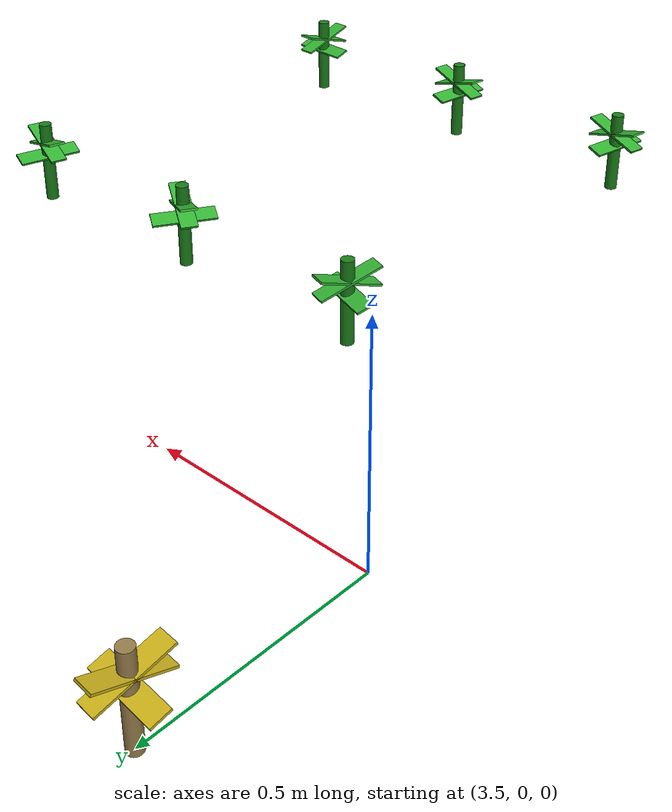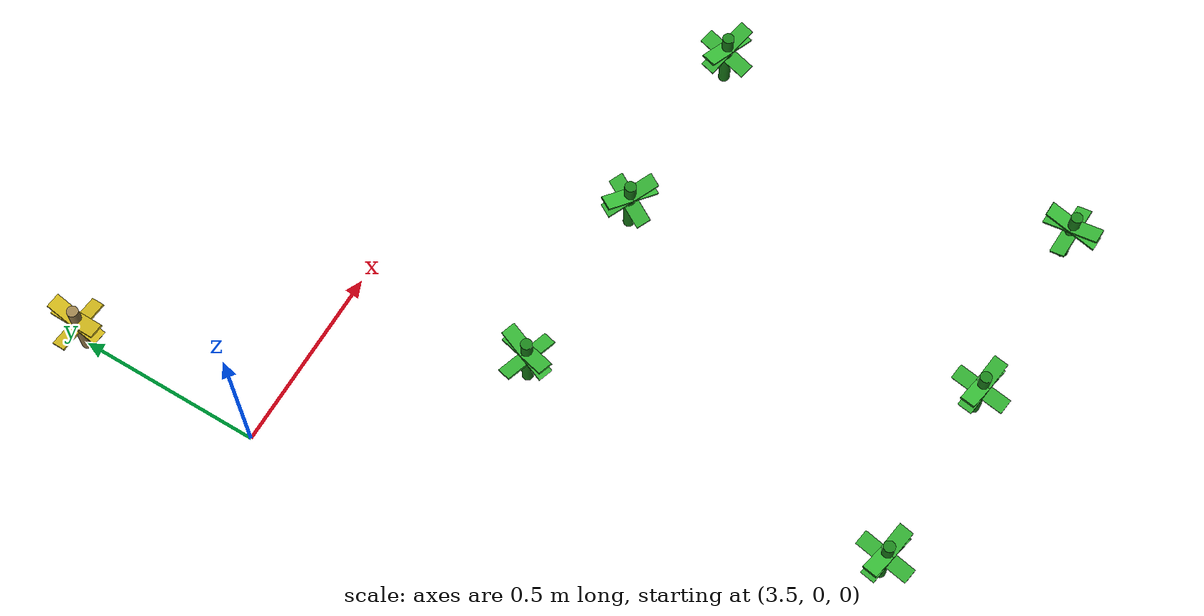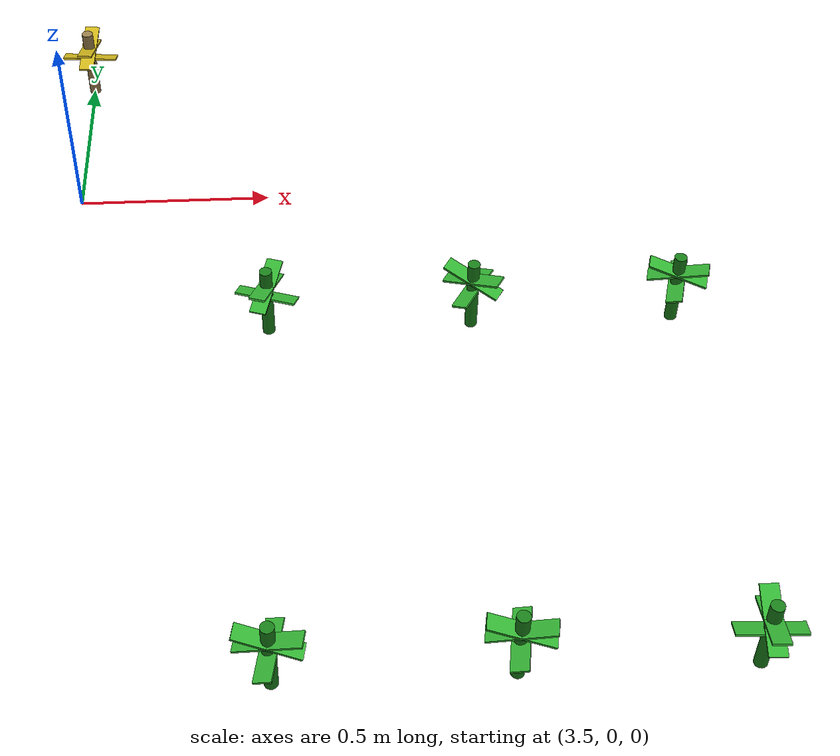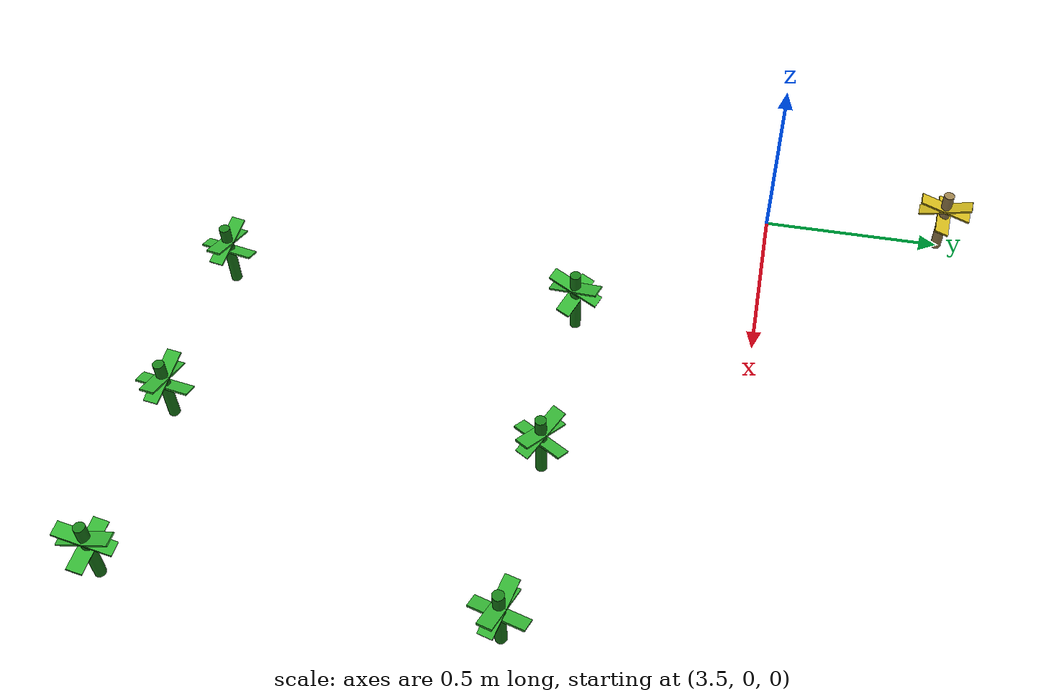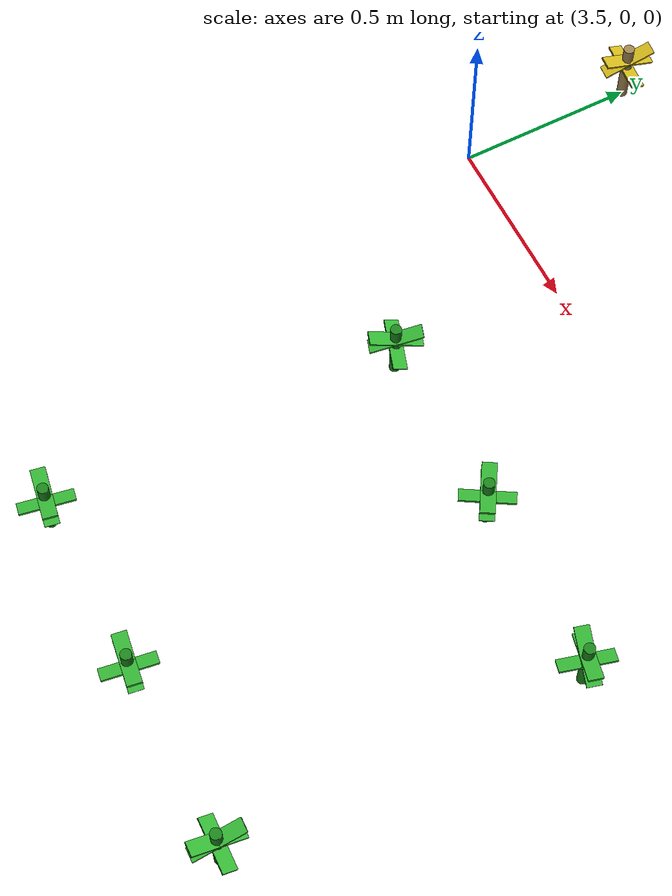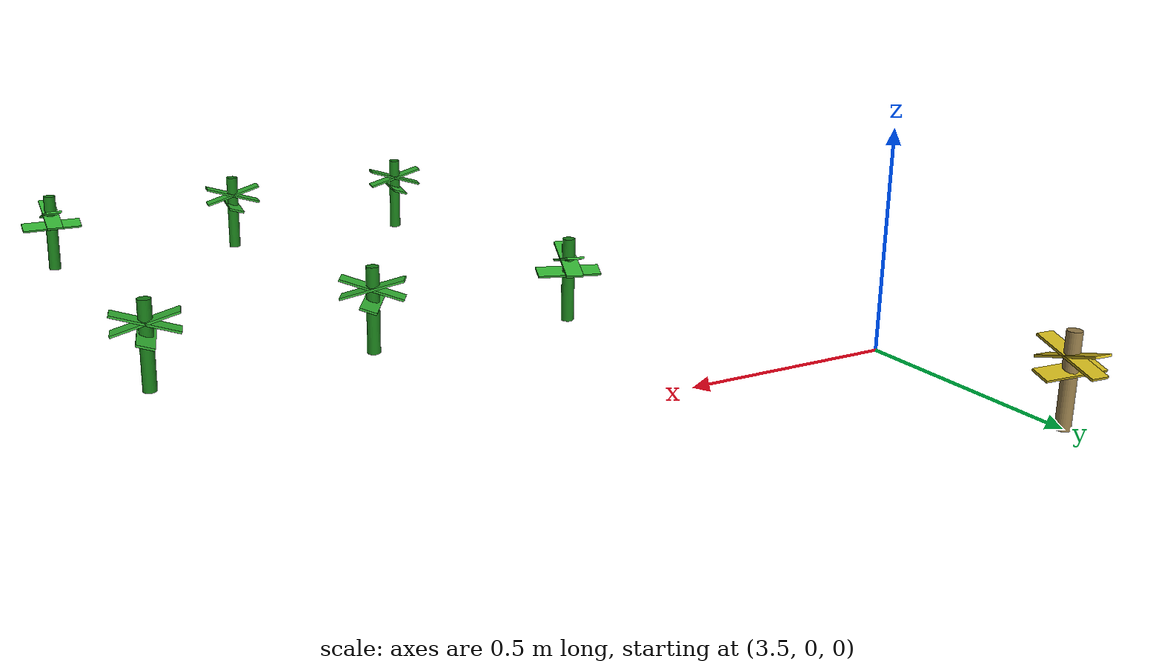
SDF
<sdf version="1.6">
 <world name="farm_world">
  <include><uri>model://sun</uri></include>
  <model name="plant_70">
   <pose>3.5 0.5 0 0 0 1.48239750308629</pose>
   <static>true</static>
   <link name="link">
    <visual name="stem">
     <pose>0 0 0.1 0 0 0</pose>
     <geometry><cylinder><radius>0.015</radius><length>0.2</length></cylinder></geometry>
     <material><ambient>0.6 0.5 0.3 1</ambient><diffuse>0.6 0.5 0.3 1</diffuse></material>
    </visual>
    <visual name="leaf_1">
     <pose>0 0 0.15 0 0.3 0</pose>
     <geometry><box><size>0.15 0.04 0.005</size></box></geometry>
     <material><ambient>0.8 0.7 0.1 1</ambient><diffuse>0.8 0.7 0.1 1</diffuse></material>
    </visual>
    <visual name="leaf_2">
     <pose>0 0 0.15 0 -0.3 0</pose>
     <geometry><box><size>0.15 0.04 0.005</size></box></geometry>
     <material><ambient>0.8 0.7 0.1 1</ambient><diffuse>0.8 0.7 0.1 1</diffuse></material>
    </visual>
    <visual name="leaf_3">
     <pose>0 0 0.12 0.3 0 1.57</pose>
     <geometry><box><size>0.15 0.04 0.005</size></box></geometry>
     <material><ambient>0.8 0.7 0.1 1</ambient><diffuse>0.8 0.7 0.1 1</diffuse></material>
    </visual>
    <collision name="collision">
     <pose>0 0 0.1 0 0 0</pose>
     <geometry><cylinder><radius>0.05</radius><length>0.2</length></cylinder></geometry>
    </collision>
   </link>
  </model>
  <model name="plant_72">
   <pose>4.0 -1.5 0 0 0 2.9597059811443778</pose>
   <static>true</static>
   <link name="link">
    <visual name="stem">
     <pose>0 0 0.1 0 0 0</pose>
     <geometry><cylinder><radius>0.015</radius><length>0.2</length></cylinder></geometry>
     <material><ambient>0.1 0.5 0.1 1</ambient><diffuse>0.1 0.5 0.1 1</diffuse></material>
    </visual>
    <visual name="leaf_1">
     <pose>0 0 0.15 0 0.3 0</pose>
     <geometry><box><size>0.15 0.04 0.005</size></box></geometry>
     <material><ambient>0.2 0.7 0.2 1</ambient><diffuse>0.2 0.7 0.2 1</diffuse></material>
    </visual>
    <visual name="leaf_2">
     <pose>0 0 0.15 0 -0.3 0</pose>
     <geometry><box><size>0.15 0.04 0.005</size></box></geometry>
     <material><ambient>0.2 0.7 0.2 1</ambient><diffuse>0.2 0.7 0.2 1</diffuse></material>
    </visual>
    <visual name="leaf_3">
     <pose>0 0 0.12 0.3 0 1.57</pose>
     <geometry><box><size>0.15 0.04 0.005</size></box></geometry>
     <material><ambient>0.2 0.7 0.2 1</ambient><diffuse>0.2 0.7 0.2 1</diffuse></material>
    </visual>
    <collision name="collision">
     <pose>0 0 0.1 0 0 0</pose>
     <geometry><cylinder><radius>0.05</radius><length>0.2</length></cylinder></geometry>
    </collision>
   </link>
  </model>
  <model name="plant_73">
   <pose>4.0 -0.5 0 0 0 1.251054392671929</pose>
   <static>true</static>
   <link name="link">
    <visual name="stem">
     <pose>0 0 0.1 0 0 0</pose>
     <geometry><cylinder><radius>0.015</radius><length>0.2</length></cylinder></geometry>
     <material><ambient>0.1 0.5 0.1 1</ambient><diffuse>0.1 0.5 0.1 1</diffuse></material>
    </visual>
    <visual name="leaf_1">
     <pose>0 0 0.15 0 0.3 0</pose>
     <geometry><box><size>0.15 0.04 0.005</size></box></geometry>
     <material><ambient>0.2 0.7 0.2 1</ambient><diffuse>0.2 0.7 0.2 1</diffuse></material>
    </visual>
    <visual name="leaf_2">
     <pose>0 0 0.15 0 -0.3 0</pose>
     <geometry><box><size>0.15 0.04 0.005</size></box></geometry>
     <material><ambient>0.2 0.7 0.2 1</ambient><diffuse>0.2 0.7 0.2 1</diffuse></material>
    </visual>
    <visual name="leaf_3">
     <pose>0 0 0.12 0.3 0 1.57</pose>
     <geometry><box><size>0.15 0.04 0.005</size></box></geometry>
     <material><ambient>0.2 0.7 0.2 1</ambient><diffuse>0.2 0.7 0.2 1</diffuse></material>
    </visual>
    <collision name="collision">
     <pose>0 0 0.1 0 0 0</pose>
     <geometry><cylinder><radius>0.05</radius><length>0.2</length></cylinder></geometry>
    </collision>
   </link>
  </model>
  <model name="plant_76">
   <pose>4.5 -1.5 0 0 0 2.99107880340328</pose>
   <static>true</static>
   <link name="link">
    <visual name="stem">
     <pose>0 0 0.1 0 0 0</pose>
     <geometry><cylinder><radius>0.015</radius><length>0.2</length></cylinder></geometry>
     <material><ambient>0.1 0.5 0.1 1</ambient><diffuse>0.1 0.5 0.1 1</diffuse></material>
    </visual>
    <visual name="leaf_1">
     <pose>0 0 0.15 0 0.3 0</pose>
     <geometry><box><size>0.15 0.04 0.005</size></box></geometry>
     <material><ambient>0.2 0.7 0.2 1</ambient><diffuse>0.2 0.7 0.2 1</diffuse></material>
    </visual>
    <visual name="leaf_2">
     <pose>0 0 0.15 0 -0.3 0</pose>
     <geometry><box><size>0.15 0.04 0.005</size></box></geometry>
     <material><ambient>0.2 0.7 0.2 1</ambient><diffuse>0.2 0.7 0.2 1</diffuse></material>
    </visual>
    <visual name="leaf_3">
     <pose>0 0 0.12 0.3 0 1.57</pose>
     <geometry><box><size>0.15 0.04 0.005</size></box></geometry>
     <material><ambient>0.2 0.7 0.2 1</ambient><diffuse>0.2 0.7 0.2 1</diffuse></material>
    </visual>
    <collision name="collision">
     <pose>0 0 0.1 0 0 0</pose>
     <geometry><cylinder><radius>0.05</radius><length>0.2</length></cylinder></geometry>
    </collision>
   </link>
  </model>
  <model name="plant_77">
   <pose>4.5 -0.5 0 0 0 2.5979753106272336</pose>
   <static>true</static>
   <link name="link">
    <visual name="stem">
     <pose>0 0 0.1 0 0 0</pose>
     <geometry><cylinder><radius>0.015</radius><length>0.2</length></cylinder></geometry>
     <material><ambient>0.1 0.5 0.1 1</ambient><diffuse>0.1 0.5 0.1 1</diffuse></material>
    </visual>
    <visual name="leaf_1">
     <pose>0 0 0.15 0 0.3 0</pose>
     <geometry><box><size>0.15 0.04 0.005</size></box></geometry>
     <material><ambient>0.2 0.7 0.2 1</ambient><diffuse>0.2 0.7 0.2 1</diffuse></material>
    </visual>
    <visual name="leaf_2">
     <pose>0 0 0.15 0 -0.3 0</pose>
     <geometry><box><size>0.15 0.04 0.005</size></box></geometry>
     <material><ambient>0.2 0.7 0.2 1</ambient><diffuse>0.2 0.7 0.2 1</diffuse></material>
    </visual>
    <visual name="leaf_3">
     <pose>0 0 0.12 0.3 0 1.57</pose>
     <geometry><box><size>0.15 0.04 0.005</size></box></geometry>
     <material><ambient>0.2 0.7 0.2 1</ambient><diffuse>0.2 0.7 0.2 1</diffuse></material>
    </visual>
    <collision name="collision">
     <pose>0 0 0.1 0 0 0</pose>
     <geometry><cylinder><radius>0.05</radius><length>0.2</length></cylinder></geometry>
    </collision>
   </link>
  </model>
  <model name="plant_80">
   <pose>5.0 -1.5 0 0 0 1.5311005588244953</pose>
   <static>true</static>
   <link name="link">
    <visual name="stem">
     <pose>0 0 0.1 0 0 0</pose>
     <geometry><cylinder><radius>0.015</radius><length>0.2</length></cylinder></geometry>
     <material><ambient>0.1 0.5 0.1 1</ambient><diffuse>0.1 0.5 0.1 1</diffuse></material>
    </visual>
    <visual name="leaf_1">
     <pose>0 0 0.15 0 0.3 0</pose>
     <geometry><box><size>0.15 0.04 0.005</size></box></geometry>
     <material><ambient>0.2 0.7 0.2 1</ambient><diffuse>0.2 0.7 0.2 1</diffuse></material>
    </visual>
    <visual name="leaf_2">
     <pose>0 0 0.15 0 -0.3 0</pose>
     <geometry><box><size>0.15 0.04 0.005</size></box></geometry>
     <material><ambient>0.2 0.7 0.2 1</ambient><diffuse>0.2 0.7 0.2 1</diffuse></material>
    </visual>
    <visual name="leaf_3">
     <pose>0 0 0.12 0.3 0 1.57</pose>
     <geometry><box><size>0.15 0.04 0.005</size></box></geometry>
     <material><ambient>0.2 0.7 0.2 1</ambient><diffuse>0.2 0.7 0.2 1</diffuse></material>
    </visual>
    <collision name="collision">
     <pose>0 0 0.1 0 0 0</pose>
     <geometry><cylinder><radius>0.05</radius><length>0.2</length></cylinder></geometry>
    </collision>
   </link>
  </model>
  <model name="plant_81">
   <pose>5.0 -0.5 0 0 0 2.8721744322954126</pose>
   <static>true</static>
   <link name="link">
    <visual name="stem">
     <pose>0 0 0.1 0 0 0</pose>
     <geometry><cylinder><radius>0.015</radius><length>0.2</length></cylinder></geometry>
     <material><ambient>0.1 0.5 0.1 1</ambient><diffuse>0.1 0.5 0.1 1</diffuse></material>
    </visual>
    <visual name="leaf_1">
     <pose>0 0 0.15 0 0.3 0</pose>
     <geometry><box><size>0.15 0.04 0.005</size></box></geometry>
     <material><ambient>0.2 0.7 0.2 1</ambient><diffuse>0.2 0.7 0.2 1</diffuse></material>
    </visual>
    <visual name="leaf_2">
     <pose>0 0 0.15 0 -0.3 0</pose>
     <geometry><box><size>0.15 0.04 0.005</size></box></geometry>
     <material><ambient>0.2 0.7 0.2 1</ambient><diffuse>0.2 0.7 0.2 1</diffuse></material>
    </visual>
    <visual name="leaf_3">
     <pose>0 0 0.12 0.3 0 1.57</pose>
     <geometry><box><size>0.15 0.04 0.005</size></box></geometry>
     <material><ambient>0.2 0.7 0.2 1</ambient><diffuse>0.2 0.7 0.2 1</diffuse></material>
    </visual>
    <collision name="collision">
     <pose>0 0 0.1 0 0 0</pose>
     <geometry><cylinder><radius>0.05</radius><length>0.2</length></cylinder></geometry>
    </collision>
   </link>
  </model>
 </world>
</sdf>
